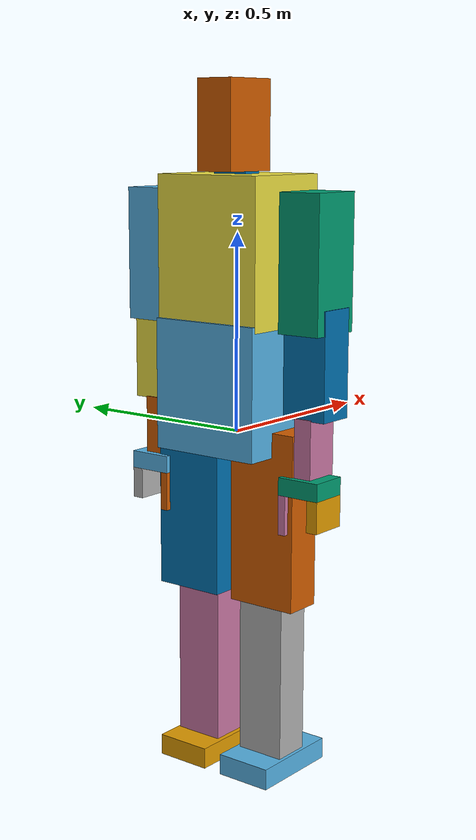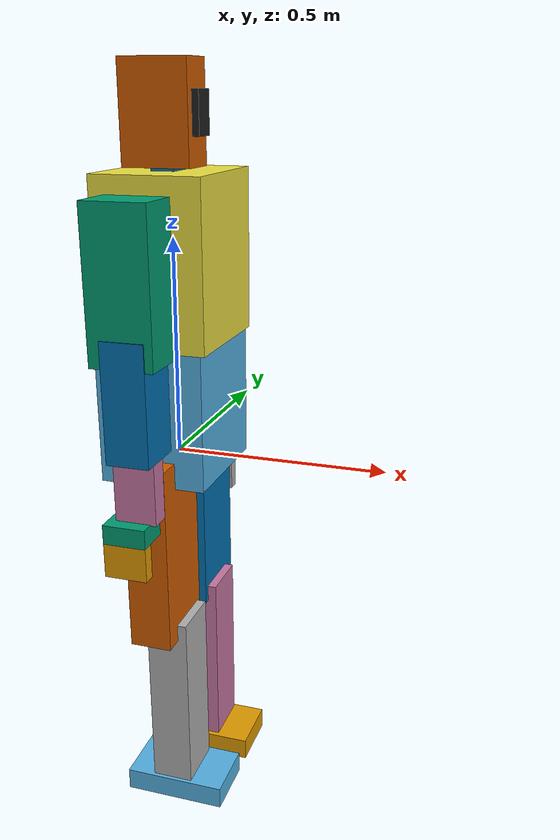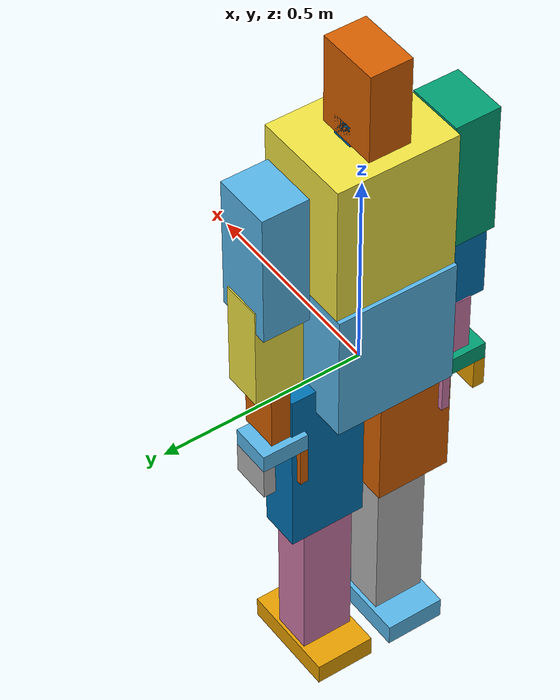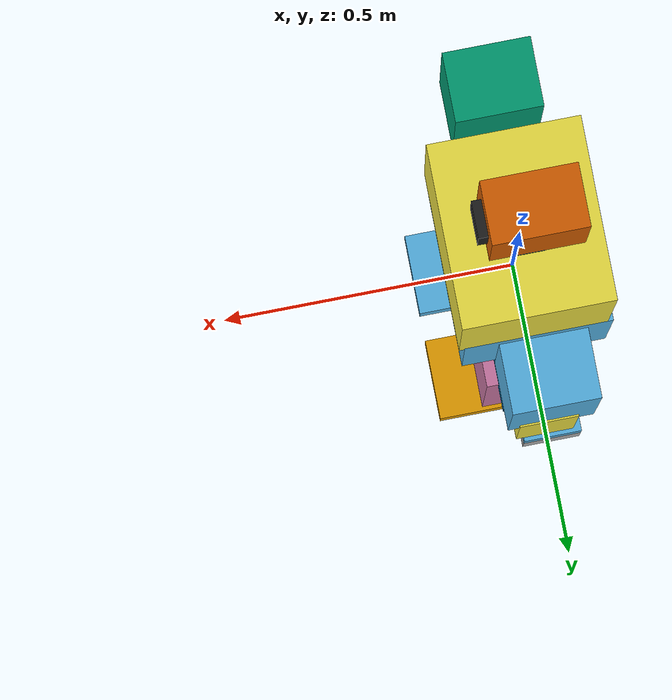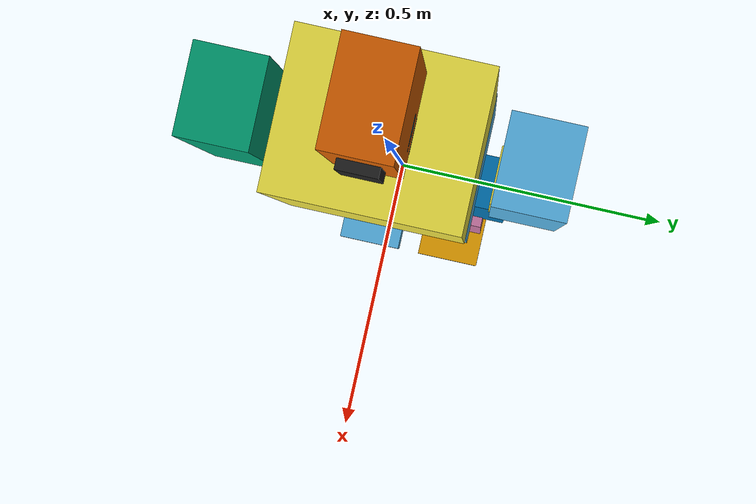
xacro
<?xml version="1.0"?>

<robot name="thor">

  <link name="base_link">
    <origin xyz="0 0 0.8925" />
    <inertial>
      <mass value="0" />
      <inertia ixx="0" iyy="0" izz="0" ixy="0" ixz="0" iyz="0" />
    </inertial>
  </link>
  <link name="torso">
    <origin xyz="0 0 0.8925" />
    <collision name="torso_collision">
       <origin xyz="-0.0085 0 0.1255015" />
      <geometry>
        <box size="0.25 0.3 0.3299971" />
      </geometry>
    </collision>
    <visual name="torso_visual">
      <origin xyz="-0.0085 0 0.1255015" />
      <geometry>
        <box size="0.25 0.3 0.3299971" />
      </geometry>
    </visual>
    <inertial>
      <origin xyz="-0.02884476 -0.000339931 0.139567304" />
      <mass value="12.227102888619" />
      <inertia ixx="0.168786051" iyy="0.151804339" izz="0.183945912" iyz="0.000299081" ixz="0.000191055" ixy="0.000230307" />
    </inertial>
  </link>

  <link name="kvh_link" />

  <joint name="kvh_joint" type="fixed">
    <origin xyz="-0.184 0 0.116855" rpy="0 0 1.5707963267949" />
    <axis xyz="0 0 1" />
    <parent link="torso" />
    <child link="kvh_link" />
  </joint>

  <link name="microstrain_link" />

  <joint name="microstrain_joint" type="fixed">
    <origin xyz="-0.0085 0 0.1255015" rpy="0 0 1.5707963267949" />
    <axis xyz="0 0 1" />
    <parent link="torso" />
    <child link="microstrain_link" />
  </joint>

  <link name="l_thigh">
    <collision name="l_thigh_collision">
      <origin xyz="-0.002281 0.017675 -0.2021685" />
      <geometry>
        <box size="0.1 0.18965 0.4496629" />
      </geometry>
    </collision>
    <visual name="l_thigh_visual">
      <origin xyz="-0.002281 0.017675 -0.2021685" />
      <geometry>
        <box size="0.1 0.18965 0.4496629" />
      </geometry>
    </visual>
    <inertial>
      <origin xyz="-0.02004484 0.027446943 -0.219706409" />
      <mass value="5.13807864986" />
      <inertia ixx="0.050251535" iyy="0.04823009" izz="0.01825638" iyz="0.000428731" ixz="-0.00485734" ixy="-0.000369726" />
    </inertial>
  </link>

  <link name="r_thigh">
    <collision name="r_thigh_collision">
      <origin xyz="-0.002281 -0.017675 -0.2021685" />
      <geometry>
        <box size="0.1 0.18965 0.4496629" />
      </geometry>
    </collision>
    <visual name="r_thigh_visual">
      <origin xyz="-0.002281 -0.017675 -0.2021685" />
      <geometry>
        <box size="0.1 0.18965 0.4496629" />
      </geometry>
    </visual>
    <inertial>
      <origin xyz="-0.020031387 -0.027475579 -0.219745232" />
      <mass value="5.1402729320628" />
      <inertia ixx="0.050266937" iyy="0.048269843" izz="0.018232029" iyz="-0.000479151" ixz="-0.004868597" ixy="0.000400241" />
    </inertial>
  </link>

  <link name="l_shin">
    <collision name="l_shin_collision">
      <origin xyz="0.0190724 0.0021182 -0.2013892" />
      <geometry>
        <box size="0.1 0.13 0.4512008" />
      </geometry>
    </collision>
    <visual name="l_shin_visual">
      <origin xyz="0.0190724 0.0021182 -0.2013892" />
      <geometry>
        <box size="0.1 0.13 0.4512008" />
      </geometry>
    </visual>
    <inertial>
      <origin xyz="0.035524575 0.00050081099999999 -0.159844769" />
      <mass value="4.2301928995278" />
      <inertia ixx="0.042672286" iyy="0.043770804" izz="0.012910027" iyz="-0.000372327" ixz="0.005863435" ixy="-4.6942e-05" />
    </inertial>
  </link>

  <link name="r_shin">
    <collision name="r_shin_collision">
      <origin xyz="0.0190724 -0.0021182 -0.2013892" />
      <geometry>
        <box size="0.1 0.13 0.4512008" />
      </geometry>
    </collision>
    <visual name="r_shin_visual">
      <origin xyz="0.0190724 -0.0021182 -0.2013892" />
      <geometry>
        <box size="0.1 0.13 0.4512008" />
      </geometry>
    </visual>
    <inertial>
      <origin xyz="0.035524569 -0.000282961 -0.159844769" />
      <mass value="4.2301928995278" />
      <inertia ixx="0.042672987" iyy="0.043770806" izz="0.012910729" iyz="0.000406027" ixz="0.005863442" ixy="6.7751e-05" />
    </inertial>
  </link>

  <link name="l_foot">
    <collision name="l_foot_collision">
      <origin xyz="0.025 0 -0.0458276" />
      <geometry>
        <box size="0.25 0.1485 0.05493235" />
      </geometry>
    </collision>
    <visual name="l_foot_visual">
      <origin xyz="0.025 0 -0.0458276" />
      <geometry>
        <box size="0.25 0.1485 0.05493235" />
      </geometry>
    </visual>
    <inertial>
      <origin xyz="-0.003042516 0.00096434599999999 -0.040483259" />
      <mass value="1.7169625926048" />
      <inertia ixx="0.00336244" iyy="0.006955959" izz="0.007417438" iyz="3.0838e-05" ixz="-0.001236319" ixy="5.764e-06" />
    </inertial>
  </link>

  <link name="r_foot">
    <collision name="r_foot_collision">
      <origin xyz="0.025 -0.00075 -0.0458276" />
      <geometry>
        <box size="0.25 0.1485 0.05493235" />
      </geometry>
    </collision>
    <visual name="r_foot_visual">
      <origin xyz="0.025 -0.00075 -0.0458276" />
      <geometry>
        <box size="0.25 0.1485 0.05493235" />
      </geometry>
    </visual>
    <inertial>
      <origin xyz="-0.002942557 -0.00094983899999999 -0.040490458" />
      <mass value="1.7201733736363" />
      <inertia ixx="0.003363358" iyy="0.006961913" izz="0.007424205" iyz="-3.0884e-05" ixz="-0.001236643" ixy="-3.631e-06" />
    </inertial>
  </link>

  <link name="l_sole"/>

  <link name="r_sole"/>

  <joint name="l_sole_joint" type="fixed">
    <origin xyz="0.025 0 -0.0740875" />
    <parent link="l_foot"/>
    <child link="l_sole"/>
  </joint>

  <joint name="r_sole_joint" type="fixed">
    <origin xyz="0.025 0 -0.0740875" />
    <parent link="r_foot"/>
    <child link="r_sole"/>
  </joint>

  <link name="l_hip_yaw_trunnion">
    <!-- Axis = "z", -->
    <inertial>
      <mass value="0.051573426573425" />
      <inertia ixx="0.0085833333333333" iyy="0.0085833333333333" izz="0.00075" ixy="0" ixz="0" iyz="0" />
    </inertial>
  </link>

  <link name="r_hip_yaw_trunnion">
    <!-- Axis = "z", -->
    <inertial>
      <mass value="0.051573426573425" />
      <inertia ixx="0.0085833333333333" iyy="0.0085833333333333" izz="0.00075" ixy="0" ixz="0" iyz="0" />
    </inertial>
  </link>

  <link name="l_hip_pitch_trunnion">
    <!-- Axis = "y", -->
    <inertial>
      <origin rpy="1.5707963267949 0 0" />
      <mass value="0.051573426573425" />
      <inertia ixx="0.0085833333333333" iyy="0.0085833333333333" izz="0.00075" ixy="0" ixz="0" iyz="0" />
    </inertial>
  </link>

  <link name="r_hip_pitch_trunnion">
    <!-- Axis = "y", -->
    <inertial>
      <origin rpy="1.5707963267949 0 0" />
      <mass value="0.051573426573425" />
      <inertia ixx="0.0085833333333333" iyy="0.0085833333333333" izz="0.00075" ixy="0" ixz="0" iyz="0" />
    </inertial>
  </link>

  <link name="l_ankle_pitch_trunnion">
    <!-- Axis = "y", -->
    <inertial>
      <origin rpy="1.5707963267949 0 0" />
      <mass value="0.051573426573425" />
      <inertia ixx="0.0085833333333333" iyy="0.0085833333333333" izz="0.00075" ixy="0" ixz="0" iyz="0" />
    </inertial>
  </link>

  <link name="r_ankle_pitch_trunnion">
    <!-- Axis = "y", -->
    <inertial>
      <origin rpy="1.5707963267949 0 0" />
      <mass value="0.051573426573425" />
      <inertia ixx="0.0085833333333333" iyy="0.0085833333333333" izz="0.00075" ixy="0" ixz="0" iyz="0" />
    </inertial>
  </link>

  <joint name="base_joint" type="fixed">
    <origin xyz="0 0 0" rpy="0 0 0" />
    <axis xyz="0 0 1"/>
    <parent link="base_link" />
    <child link="torso" />
  </joint>

  <joint name="l_hip_yaw" type="revolute">
    <origin xyz="0 0.1 0" />
    <parent link="torso" />
    <child link="l_hip_yaw_trunnion" />
    <axis xyz="0 0 1" />
    <limit lower="-0.34906585039887" upper="0.78539816339745" effort="150" velocity="1.6" />
    <dynamics damping="1.0" friction="0" />
  </joint>

  <joint name="r_hip_yaw" type="revolute">
    <origin xyz="0 -0.1 0" />
    <parent link="torso" />
    <child link="r_hip_yaw_trunnion" />
    <axis xyz="0 0 1" />
    <limit lower="-0.78539816339745" upper="0.34906585039887" effort="150" velocity="1.6" />
    <dynamics damping="1.0" friction="0" />
  </joint>

  <joint name="l_hip_roll" type="revolute">
    <origin xyz="0 0 0" />
    <parent link="l_hip_yaw_trunnion" />
    <child link="l_hip_pitch_trunnion" />
    <axis xyz="1 0 0" />
    <limit lower="-0.5235987755983" upper="0.78539816339745" effort="150" velocity="1.6" />
    <dynamics damping="1.0" friction="0" />
  </joint>

  <joint name="r_hip_roll" type="revolute">
    <origin xyz="0 0 0" />
    <parent link="r_hip_yaw_trunnion" />
    <child link="r_hip_pitch_trunnion" />
    <axis xyz="1 0 0" />
    <limit lower="-0.78539816339745" upper="0.5235987755983" effort="150" velocity="1.6" />
    <dynamics damping="1.0" friction="0" />
  </joint>

  <joint name="l_hip_pitch" type="revolute">
    <origin xyz="0 0 0" />
    <parent link="l_hip_pitch_trunnion" />
    <child link="l_thigh" />
    <axis xyz="0 1 0" />
    <limit lower="-2.0943951023932" upper="0.5235987755983" effort="150" velocity="1.6" />
    <dynamics damping="1.0" friction="0" />
  </joint>

  <joint name="r_hip_pitch" type="revolute">
    <origin xyz="0 0 0" />
    <parent link="r_hip_pitch_trunnion" />
    <child link="r_thigh" />
    <axis xyz="0 1 0" />
    <limit lower="-2.0943951023932" upper="0.5235987755983" effort="150" velocity="1.6" />
    <dynamics damping="1.0" friction="0" />
  </joint>

  <joint name="l_knee_pitch" type="revolute">
    <origin xyz="0 0 -0.41" />
    <parent link="l_thigh" />
    <child link="l_shin" />
    <axis xyz="0 1 0" />
    <limit lower="0" upper="2.3561944901923" effort="150" velocity="1.6" />
    <dynamics damping="1.0" friction="0" />
  </joint>

  <joint name="r_knee_pitch" type="revolute">
    <origin xyz="0 0 -0.41" />
    <parent link="r_thigh" />
    <child link="r_shin" />
    <axis xyz="0 1 0" />
    <limit lower="0" upper="2.3561944901923" effort="150" velocity="1.6" />
    <dynamics damping="1.0" friction="0" />
  </joint>

  <joint name="l_ankle_pitch" type="revolute">
    <origin xyz="0 0 -0.41" />
    <parent link="l_shin" />
    <child link="l_ankle_pitch_trunnion" />
    <axis xyz="0 1 0" />
    <limit lower="-0.95993108859688" upper="0.61086523819802" effort="150" velocity="1.6" />
    <dynamics damping="1.0" friction="0" />
  </joint>

  <joint name="r_ankle_pitch" type="revolute">
    <origin xyz="0 0 -0.41" />
    <parent link="r_shin" />
    <child link="r_ankle_pitch_trunnion" />
    <axis xyz="0 1 0" />
    <limit lower="-0.95993108859688" upper="0.61086523819802" effort="150" velocity="1.6" />
    <dynamics damping="1.0" friction="0" />
  </joint>

  <joint name="l_ankle_roll" type="revolute">
    <origin xyz="0 0 0" />
    <parent link="l_ankle_pitch_trunnion" />
    <child link="l_foot" />
    <axis xyz="1 0 0" />
    <limit lower="-0.5235987755983" upper="0.5235987755983" effort="150" velocity="1.6" />
    <dynamics damping="1.0" friction="0" />
  </joint>

  <joint name="r_ankle_roll" type="revolute">
    <origin xyz="0 0 0" />
    <parent link="r_ankle_pitch_trunnion" />
    <child link="r_foot" />
    <axis xyz="1 0 0" />
    <limit lower="-0.5235987755983" upper="0.5235987755983" effort="150" velocity="1.6" />
    <dynamics damping="1.0" friction="0" />
  </joint>

  <joint name="waist_yaw" type="revolute">
    <origin xyz="0 0 0.365" />
    <parent link="torso" />
    <child link="waist_pitch_trunnion" />
    <axis xyz="0 0 1" />
    <limit lower="-0.78539816339745" upper="0.78539816339745" effort="150" velocity="1.6" />
    <dynamics damping="1.0" friction="0" />
  </joint>

  <link name="waist_pitch_trunnion">
    <!-- Axis = "y", -->
    <inertial>
      <origin rpy="1.5707963267949 0 0" />
      <mass value="0.051573426573425" />
      <inertia ixx="0.0085833333333333" iyy="0.0085833333333333" izz="0.00075" ixy="0" ixz="0" iyz="0" />
    </inertial>
  </link>

  <joint name="waist_pitch" type="revolute">
    <origin xyz="0 0 0" />
    <parent link="waist_pitch_trunnion" />
    <child link="chest" />
    <axis xyz="0 1 0" />
    <limit lower="-0.34906585039887" upper="0.34906585039887" effort="150" velocity="1.6" />
    <dynamics damping="1.0" friction="0" />
  </joint>

  <link name="chest">
    <collision name="chest_collision">
      <origin xyz="0.001 0 0.09375" />
      <geometry>
        <box size="0.25 0.3 0.3685" />
      </geometry>
    </collision>
    <visual name="chest_visual">
      <origin xyz="0.001 0 0.09375" />
      <geometry>
        <box size="0.25 0.3 0.3685" />
      </geometry>
    </visual>
    <inertial>
      <origin xyz="-0.009475235 0.003477582 0.109792633" />
      <mass value="8.9112224908039" />
      <inertia ixx="0.212139518" iyy="0.177608078" izz="0.082558505" iyz="0.000482353" ixz="-0.001780773" ixy="0.000361146" />
    </inertial>
  </link>

  <joint name="head_yaw" type="revolute">
    <origin xyz="0 0 0.278" />
    <parent link="chest" />
    <child link="neck" />
    <axis xyz="0 0 1" />
    <limit lower="-1.5707963267949" upper="1.5707963267949" effort="150" velocity="1.6" />
    <dynamics damping="1.0" friction="0" />
  </joint>

  <link name="neck">
    <collision name="neck_collision">
      <origin xyz="0 0.003 0.024025" />
      <geometry>
        <box size="0.0541 0.096 0.05405" />
      </geometry>
    </collision>
    <visual name="neck_visual">
      <origin xyz="0 0.003 0.024025" />
      <geometry>
        <box size="0.0541 0.096 0.05405" />
      </geometry>
    </visual>
    <inertial>
      <origin xyz="1.2e-08 0.000124683 0.024528056" />
      <mass value="0.42837005699299" />
      <inertia ixx="0.000336505" iyy="0.000143407" izz="0.000323735" iyz="-8.463e-06" ixz="0" ixy="-0" />
    </inertial>
  </link>

  <joint name="head_pitch" type="revolute">
    <origin xyz="0 0 0.027" />
    <parent link="neck" />
    <child link="head" />
    <axis xyz="0 1 0" />
    <limit lower="-0.5235987755983" upper="1.0471975511966" effort="150" velocity="1.6" />
    <dynamics damping="1.0" friction="0" />
  </joint>

  <link name="head">
    <collision name="head_collision">
      <origin xyz="-0.0142568 0 0.08855" />
      <geometry>
        <box size="0.155386 0.102 0.2191" />
      </geometry>
    </collision>
    <visual name="head_visual">
      <origin xyz="-0.0142568 0 0.08855" />
      <geometry>
        <box size="0.155386 0.102 0.2191" />
      </geometry>
    </visual>
    <inertial>
      <origin xyz="-0.019216774 4.1336e-05 0.144911706" />
      <mass value="2.2650798087587" />
      <inertia ixx="0.013808097" iyy="0.011370053" izz="0.007199137" iyz="-9.74e-06" ixz="0.002271466" ixy="1.389e-06" />
    </inertial>
  </link>

  <!-- Flir Camera Frames -->
  <!-- Left Flir Camera -->
  <joint name="left_flir_frame_joint" type="fixed">
    <origin xyz="0.0211362 0.084 0.180" />
    <parent link="head" />
    <child link="left_flir_camera_frame" />
  </joint>

  <link name="left_flir_camera_frame">
  </link>

  <joint name="left_flir_optical_joint" type="fixed">
    <origin xyz="0 0 0" rpy="-1.5708 0.0 -1.5708" />
    <parent link="left_flir_camera_frame" />
    <child link="left_flir_optical_frame" />
  </joint>

  <link name="left_flir_optical_frame">
  </link>

  <!-- Right Flir Camera -->
  <joint name="right_flir_frame_joint" type="fixed">
     <origin xyz="0.0211362 -0.084 0.180" />
    <parent link="head" />
    <parent link="head" />
    <child link="right_flir_camera_frame" />
  </joint>

  <link name="right_flir_camera_frame">
  </link>

  <joint name="right_flir_optical_joint" type="fixed">
    <origin xyz="0 0 0" rpy="-1.5708 0.0 -1.5708" />
    <parent link="right_flir_camera_frame" />
    <child link="right_flir_optical_frame" />
  </joint>

  <link name="right_flir_optical_frame">
  </link>

  <!-- MultiSense stereo camera -->
  <gazebo reference="left_camera_frame">
    <sensor type="multicamera" name="stereo_camera">
      <!-- see MultiSenseSLPlugin.h for available modes -->
      <update_rate>30.0</update_rate>
      <camera name="left">
        <!-- Spec sheet says 80deg X 45deg @ 1024x544pix.  Based on feedback
             from teams, we're instead doing 80deg X 80deg @ 800x800pix. -->
        <horizontal_fov>1.3962634</horizontal_fov>
        <image>
          <width>800</width>
          <height>800</height>
          <format>R8G8B8</format>
        </image>
        <clip>
          <near>0.02</near>
          <far>300</far>
        </clip>
        <noise>
          <type>gaussian</type>
          <mean>0.0</mean>
          <stddev>0.007</stddev>
        </noise>
      </camera>
      <camera name="right">
        <pose>0 -0.07 0 0 0 0</pose>
        <!-- Spec sheet says 80deg X 45deg @ 1024x544pix.  Based on feedback
             from teams, we're instead doing 80deg X 80deg @ 800x800pix. -->
        <horizontal_fov>1.3962634</horizontal_fov>
        <image>
          <width>800</width>
          <height>800</height>
          <format>R8G8B8</format>
        </image>
        <clip>
          <near>0.02</near>
          <far>300</far>
        </clip>
        <noise>
          <type>gaussian</type>
          <mean>0.0</mean>
          <stddev>0.007</stddev>
        </noise>
      </camera>
      <plugin name="stereo_camera_controller" filename="libgazebo_ros_multicamera.so">
        <alwaysOn>true</alwaysOn>
        <updateRate>0.0</updateRate>
        <cameraName>multisense</cameraName>
        <imageTopicName>image_color</imageTopicName>
        <cameraInfoTopicName>camera_info</cameraInfoTopicName>
        <frameName>/multisense/left_camera_optical_frame</frameName>
        <hackBaseline>0.07</hackBaseline>
        <distortionK1>0.0</distortionK1>
        <distortionK2>0.0</distortionK2>
        <distortionK3>0.0</distortionK3>
        <distortionT1>0.0</distortionT1>
        <distortionT2>0.0</distortionT2>
      </plugin>
    </sensor>
  </gazebo>

  <!-- Multisense params Imported from Official Multisense URDF -->
  <link name="multisense_root"/>

  <joint name="multisense_joint" type="fixed">
    <origin xyz="-0.000435 0 0.18625" />
    <parent link="head"/>
    <child link="multisense_root"/>
  </joint>

  <joint name="left_camera_joint" type="fixed">
    <origin xyz="0.052 0.035 0.0"/>
    <parent link="multisense_root"/>
    <child link="left_camera_frame"/>
  </joint>

  <link name="left_camera_frame"/>

  <joint name="right_camera_joint" type="fixed">
    <origin xyz="0.052 -0.035 0.0"/>
    <parent link="multisense_root"/>
    <child link="right_camera_frame"/>
  </joint>

  <link name="right_camera_frame"/>

  <joint name="left_camera_optical_joint" type="fixed">
    <origin xyz="0 0 0" rpy="-1.57079632679 0.0 -1.57079632679"/>
    <parent link="left_camera_frame"/>
    <child link="/multisense/left_camera_optical_frame"/>
  </joint>

  <link name="/multisense/left_camera_optical_frame"/>

  <joint name="right_camera_optical_joint" type="fixed">
    <origin xyz="0 0 0" rpy="-1.57079632679 0.0 -1.57079632679"/>
    <parent link="right_camera_frame"/>
    <child link="/multisense/right_camera_optical_frame"/>
  </joint>

  <link name="/multisense/right_camera_optical_frame"/>

  <joint name="accel_joint" type="fixed">
    <origin xyz="0.047 0.0302 -0.00075" rpy="0.0 1.57079632679 0.0"/>
    <parent link="multisense_root"/>
    <child link="accel"/>
  </joint>

  <link name="accel"/>

  <joint name="mag_joint" type="fixed">
    <origin xyz="0.047 0.0302 -0.00075" rpy="0.0 1.57079632679 0.0"/>
    <parent link="multisense_root"/>
    <child link="mag"/>
  </joint>

  <link name="mag"/>

  <joint name="gyro_joint" type="fixed">
    <origin xyz="0.047 0.03880 0.00125" rpy="-1.57079632679 0.0 -1.57079632679"/>
    <parent link="multisense_root"/>
    <child link="gyro"/>
  </joint>

  <link name="gyro"/>

  <!-- Head Lidar -->
  <joint name="head_lidar_roll" type="continuous">
    <origin xyz="0 0 0.089" />
    <parent link="head" />
    <child link="head_lidar" />
    <axis xyz="1 0 0" />
    <limit effort="150" velocity="1.6"/>
    <dynamics damping="1.0" friction="0" />
  </joint>

  <link name="head_lidar">
    <collision name="head_lidar_collision">
      <origin xyz="0 0 0" />
      <geometry>
        <box size="0.1395 0.06 0.093" />
      </geometry>
    </collision>
    <visual name="head_lidar_visual">
      <origin xyz="0.0098 0 0" />
      <geometry>
        <box size="0.1395 0.06 0.093" />
      </geometry>
      <material name="$black"/>
    </visual>
    <inertial>
      <origin xyz="0.025657021 -2.21e-06 -3.295381276" />
      <mass value="0.44774993965034" />
      <inertia ixx="0.000368817" iyy="0.00087532" izz="0.000707833" iyz="-2.1e-08" ixz="-7.653e-06" ixy="5.5e-08" />
    </inertial>
  </link>

  <joint name="head_lidar_emitter_joint" type="fixed">
    <origin xyz="0.0495 0 0.02" />
    <parent link="head_lidar" />
    <child link="head_lidar_emitter" />
  </joint>

  <link name="head_lidar_emitter"/>

  <joint name="head_lidar_receiver_joint" type="fixed">
    <origin xyz="0.0495 0 0.02" />
    <parent link="head_lidar" />
    <child link="head_lidar_receiver" />
  </joint>

  <link name="head_lidar_receiver"/>

  <joint name="l_shoulder_pitch" type="revolute">
    <origin xyz="0 0.2375 0.214" />
    <parent link="chest" />
    <child link="l_shoulder_pitch_trunnion" />
    <axis xyz="0 1 0" />
    <limit lower="-0.7418" upper="1.5707963267949" effort="150" velocity="1.6" />
    <dynamics damping="1.0" friction="0" />
  </joint>

  <joint name="r_shoulder_pitch" type="revolute">
    <origin xyz="0 -0.2375 0.214" />
    <parent link="chest" />
    <child link="r_shoulder_pitch_trunnion" />
    <axis xyz="0 1 0" />
    <limit lower="-0.7418" upper="1.5707963267949" effort="150" velocity="1.6" />
    <dynamics damping="1.0" friction="0" />
  </joint>

  <link name="l_shoulder_pitch_trunnion">
    <origin xyz="0 0 0" />
    <!-- Axis = "y", -->
    <inertial>
      <origin rpy="1.5707963267949 0 0" />
      <mass value="0.051573426573425" />
      <inertia ixx="0.0085833333333333" iyy="0.0085833333333333" izz="0.00075" ixy="0" ixz="0" iyz="0" />
    </inertial>
  </link>

  <link name="r_shoulder_pitch_trunnion">
    <origin xyz="0 0 0" />
    <!-- Axis = "y", -->
    <inertial>
      <origin rpy="1.5707963267949 0 0" />
      <mass value="0.051573426573425" />
      <inertia ixx="0.0085833333333333" iyy="0.0085833333333333" izz="0.00075" ixy="0" ixz="0" iyz="0" />
    </inertial>
  </link>

  <joint name="l_shoulder_roll" type="revolute">
    <origin xyz="0 0 0" />
    <parent link="l_shoulder_pitch_trunnion" />
    <child link="l_shoulder_yaw_trunnion" />
    <axis xyz="1 0 0" />
    <limit lower="0" upper="3.1415926535898" effort="150" velocity="1.6" />
    <dynamics damping="1.0" friction="0" />
  </joint>

  <joint name="r_shoulder_roll" type="revolute">
    <origin xyz="0 0 0" />
    <parent link="r_shoulder_pitch_trunnion" />
    <child link="r_shoulder_yaw_trunnion" />
    <axis xyz="1 0 0" />
    <limit lower="-3.1415926535898" upper="0" effort="150" velocity="1.6" />
    <dynamics damping="1.0" friction="0" />
  </joint>

  <link name="l_shoulder_yaw_trunnion">
    <!-- Axis = "z", -->
    <inertial>
      <origin xyz="0 0 0" />
      <mass value="0.051573426573425" />
      <inertia ixx="0.0085833333333333" iyy="0.0085833333333333" izz="0.00075" ixy="0" ixz="0" iyz="0" />
    </inertial>
  </link>

  <link name="r_shoulder_yaw_trunnion">
    <!-- Axis = "z", -->
    <inertial>
      <origin xyz="0 0 0" />
      <mass value="0.051573426573425" />
      <inertia ixx="0.0085833333333333" iyy="0.0085833333333333" izz="0.00075" ixy="0" ixz="0" iyz="0" />
    </inertial>
  </link>

  <joint name="l_shoulder_yaw" type="revolute">
    <origin xyz="0 0 0" />
    <parent link="l_shoulder_yaw_trunnion" />
    <child link="l_arm" />
    <axis xyz="0 0 1" />
    <limit lower="-3.1415926535898" upper="3.1415926535898" effort="150" velocity="1.6" />
    <dynamics damping="1.0" friction="0" />
  </joint>

  <joint name="r_shoulder_yaw" type="revolute">
    <origin xyz="0 0 0" />
    <parent link="r_shoulder_yaw_trunnion" />
    <child link="r_arm" />
    <axis xyz="0 0 1" />
    <limit lower="-3.1415926535898" upper="3.1415926535898" effort="150" velocity="1.6" />
    <dynamics damping="1.0" friction="0" />
  </joint>

  <link name="l_arm">
    <collision name="l_arm_collision">
      <origin xyz="0 0 -0.1398848" />
      <geometry>
        <box size="0.144 0.114 0.3337695" />
      </geometry>
    </collision>
    <visual name="l_arm_visual">
      <origin xyz="0 0 -0.1398848" />
      <geometry>
        <box size="0.144 0.114 0.3337695" />
      </geometry>
    </visual>
    <inertial>
      <origin xyz="0.007214087 -0.001779321 -0.112868931" />
      <mass value="3.0258177870279" />
      <inertia ixx="0.038478468" iyy="0.039609455" izz="0.004412843" iyz="-0.000681544" ixz="-0.003774572" ixy="4.9829e-05" />
    </inertial>
  </link>

  <link name="r_arm">
    <collision name="r_arm_collision">
      <origin xyz="0 0 -0.1398848" />
      <geometry>
        <box size="0.144 0.114 0.3337695" />
      </geometry>
    </collision>
    <visual name="r_arm_visual">
      <origin xyz="0 0 -0.1398848" />
      <geometry>
        <box size="0.144 0.114 0.3337695" />
      </geometry>
    </visual>
    <inertial>
      <origin xyz="0.007213335 0.001779321 -0.112868931" />
      <mass value="3.0258177870279" />
      <inertia ixx="0.038478468" iyy="0.039609764" izz="0.004413151" iyz="0.000681544" ixz="-0.003774703" ixy="-4.9825e-05" />
    </inertial>
  </link>

  <joint name="l_elbow_pitch" type="revolute">
    <origin xyz="0.03 0 -0.27" />
    <parent link="l_arm" />
    <child link="l_forearm" />
    <axis xyz="0 1 0" />
    <limit lower="-2.763" upper="0" effort="150" velocity="1.6" />
    <dynamics damping="1.0" friction="0" />
  </joint>

  <joint name="r_elbow_pitch" type="revolute">
    <origin xyz="0.03 0 -0.27" />
    <parent link="r_arm" />
    <child link="r_forearm" />
    <axis xyz="0 1 0" />
    <limit lower="-2.763" upper="0" effort="150" velocity="1.6" />
    <dynamics damping="1.0" friction="0" />
  </joint>

  <link name="l_forearm">
    <collision name="l_forearm_collision">
      <origin xyz="-0.0257566 0 -0.1107567" />
      <geometry>
        <box size="0.0984867 0.12 0.2684867" />
      </geometry>
    </collision>
    <visual name="l_forearm_visual">
      <origin xyz="-0.0257566 0 -0.1107567" />
      <geometry>
        <box size="0.0984867 0.12 0.2684867" />
      </geometry>
    </visual>
    <inertial>
      <origin xyz="-0.030544339 0.00037668700000001 -0.135152852" />
      <mass value="1.5466488026748" />
      <inertia ixx="0.006819683" iyy="0.006750973" izz="0.001205454" iyz="4.3534e-05" ixz="0.000101312" ixy="5.676e-06" />
    </inertial>
  </link>

  <link name="r_forearm">
    <collision name="r_forearm_collision">
      <origin xyz="-0.0257566 0 -0.1107567" />
      <geometry>
        <box size="0.0984867 0.12 0.2684867" />
      </geometry>
    </collision>
    <visual name="r_forearm_visual">
      <origin xyz="-0.0257566 0 -0.1107567" />
      <geometry>
        <box size="0.0984867 0.12 0.2684867" />
      </geometry>
    </visual>
    <inertial>
      <origin xyz="-0.030544339 8.3232999999988e-05 -0.135152852" />
      <mass value="1.5466488026748" />
      <inertia ixx="0.006819886" iyy="0.006750973" izz="0.001205657" iyz="3.9504e-05" ixz="0.000101316" ixy="4.675e-06" />
    </inertial>
  </link>

  <link name="l_foreforearm">
    <collision name="l_foreforearm_collision">
      <origin xyz="0 0 -0.0925" />
      <geometry>
        <box size="0.096 0.048 0.15" />
      </geometry>
    </collision>
    <visual name="l_foreforearm_visual">
      <origin xyz="0 0 -0.0925" />
      <geometry>
        <box size="0.096 0.048 0.15" />
      </geometry>
    </visual>
    <inertial>
      <origin xyz="0.000452337 0 -0.079473129" />
      <mass value="0.4784829261888" />
      <inertia ixx="0.000584304" iyy="0.000662668" izz="0.000222334" iyz="-0" ixz="1.3796e-05" ixy="-0" />
    </inertial>
  </link>

  <link name="r_foreforearm">
    <collision name="r_foreforearm_collision">
      <origin xyz="0 0 -0.0925" />
      <geometry>
        <box size="0.096 0.048 0.15" />
      </geometry>
    </collision>
    <visual name="r_foreforearm_visual">
      <origin xyz="0 0 -0.0925" />
      <geometry>
        <box size="0.096 0.048 0.15" />
      </geometry>
    </visual>
    <inertial>
      <origin xyz="0.000452337 0 -0.079473129" />
      <mass value="0.4784829261888" />
      <inertia ixx="0.000584304" iyy="0.000662668" izz="0.000222334" iyz="-0" ixz="1.3796e-05" ixy="-0" />
    </inertial>
  </link>

  <joint name="l_wrist_yaw" type="revolute">
    <origin xyz="-0.03 0 -0.224" />
    <parent link="l_forearm" />
    <child link="l_wrist_yaw_trunnion" />
    <axis xyz="0 0 1" />
    <limit lower="-3.1415926535898" upper="2.2165" effort="150" velocity="1.6" />
    <dynamics damping="1.0" friction="0" />
  </joint>

  <joint name="r_wrist_yaw" type="revolute">
    <origin xyz="-0.03 0 -0.224" />
    <parent link="r_forearm" />
    <child link="r_wrist_yaw_trunnion" />
    <axis xyz="0 0 1" />
    <limit lower="-2.2165" upper="3.1415926535898" effort="150" velocity="1.6" />
    <dynamics damping="1.0" friction="0" />
  </joint>

  <link name="l_wrist_yaw_trunnion">
    <!-- Axis = "z", -->
    <inertial>
      <origin xyz="0 0 0" />
      <mass value="0.051573426573425" />
      <inertia ixx="0.0085833333333333" iyy="0.0085833333333333" izz="0.00075" ixy="0" ixz="0" iyz="0" />
    </inertial>
  </link>

  <link name="r_wrist_yaw_trunnion">
    <!-- Axis = "z", -->
    <inertial>
      <origin xyz="0 0 0" />
      <mass value="0.051573426573425" />
      <inertia ixx="0.0085833333333333" iyy="0.0085833333333333" izz="0.00075" ixy="0" ixz="0" iyz="0" />
    </inertial>
  </link>

  <joint name="l_wrist_roll" type="revolute">
    <origin xyz="0 0 0" />
    <parent link="l_wrist_yaw_trunnion" />
    <child link="l_foreforearm" />
    <axis xyz="1 0 0" />
    <limit lower="-1.5675" upper="1.5675" effort="150" velocity="1.6" />
    <dynamics damping="1.0" friction="0" />
  </joint>

  <joint name="r_wrist_roll" type="revolute">
    <origin xyz="0 0 0" />
    <parent link="r_wrist_yaw_trunnion" />
    <child link="r_foreforearm" />
    <axis xyz="1 0 0" />
    <limit lower="-1.5675" upper="1.5675" effort="150" velocity="1.6" />
    <dynamics damping="1.0" friction="0" />
  </joint>

  <joint name="l_wrist_pitch" type="revolute">
    <origin xyz="0 0 -0.135" />
    <parent link="l_foreforearm" />
    <child link="l_palm" />
    <axis xyz="0 0 1" />
    <limit lower="-3.1415926535898" upper="3.1415926535898" effort="150" velocity="1.6" />
    <dynamics damping="1.0" friction="0" />
  </joint>

  <joint name="r_wrist_pitch" type="revolute">
    <origin xyz="0 0 -0.135" />
    <parent link="r_foreforearm" />
    <child link="r_palm" />
    <axis xyz="0 0 1" />
    <limit lower="-3.1415926535898" upper="3.1415926535898" effort="150" velocity="1.6" />
    <dynamics damping="1.0" friction="0" />
  </joint>

  <link name="l_palm">
    <collision name="l_palm_collision">
      <origin xyz="-0.0155 0 -0.0528" />
      <geometry>
        <box size="0.1 0.115 0.045" />
      </geometry>
    </collision>
    <visual name="l_palm_visual">
      <origin xyz="-0.0155 0 -0.0528" />
      <geometry>
        <box size="0.1 0.115 0.045" />
      </geometry>
    </visual>
    <inertial>
      <!-- These are the inertial properties of the hand, but we're storing them in the palm -->
      <origin xyz="-0.001397658 -0.003533558 -0.050588331" />
      <mass value="0.6948956863811" />
      <inertia ixx="0.001226466" iyy="0.000902363" izz="0.000978176" iyz="-1.6886e-05" ixz="1.73e-06" ixy="2.295e-06" />
    </inertial>
  </link>

  <link name="r_palm">
    <collision name="r_palm_collision">
      <origin xyz="-0.0155 0 -0.0528" />
      <geometry>
        <box size="0.1 0.115 0.045" />
      </geometry>
    </collision>
    <visual name="r_palm_visual">
      <origin xyz="-0.0155 0 -0.0528" />
      <geometry>
        <box size="0.1 0.115 0.045" />
      </geometry>
    </visual>
    <inertial>
      <!-- These are the inertial properties of the hand, but we're storing them in the palm -->
      <origin xyz="-0.001289459 0.003590313 -0.050387019" />
      <mass value="0.69091040863634" />
      <inertia ixx="0.001216336" iyy="0.000886794" izz="0.000967611" iyz="1.3538e-05" ixz="-4.852e-06" ixy="-5.455e-06" />
    </inertial>
  </link>

  <joint name="l_finger" type="revolute">
    <origin xyz="0.0305 -0.0361 -0.0753" />
    <parent link="l_palm" />
    <child link="l_finger_link" />
    <axis xyz="1 0 0" />
    <limit lower="-1.3131" upper="2.0448" effort="150" velocity="1.6" />
    <dynamics damping="1.0" friction="0" />
  </joint>

  <joint name="r_finger" type="revolute">
    <origin xyz="0.0305 0.0361 -0.0753" />
    <parent link="r_palm" />
    <child link="r_finger_link" />
    <axis xyz="1 0 0" />
    <limit lower="-2.0448" upper="1.3131" effort="150" velocity="1.6" />
    <dynamics damping="1.0" friction="0" />
  </joint>

  <link name="l_finger_link">
    <collision name="l_finger_link_collision">
      <origin xyz="-0.006 -0.0114 -0.045" />
      <geometry>
        <box size="0.02 0.02 0.09" />
      </geometry>
    </collision>
    <visual name="l_finger_link_visual">
      <origin xyz="-0.006 -0.0114 -0.045" />
      <geometry>
        <box size="0.02 0.02 0.09" />
      </geometry>
    </visual>
    <inertial>
      <origin xyz="0.002130973 -0.002211594 -0.030809453" />
      <mass value="0.06553488744755" />
      <inertia ixx="4.5416e-05" iyy="4.2966e-05" izz="5.913e-06" iyz="-1.243e-06" ixz="1.898e-06" ixy="-3.89e-07" />
    </inertial>
  </link>

  <link name="r_finger_link">
    <collision name="r_finger_link_collision">
      <origin xyz="-0.006 0.0114 -0.045" />
      <geometry>
        <box size="0.02 0.02 0.09" />
      </geometry>
    </collision>
    <visual name="r_finger_link_visual">
      <origin xyz="-0.006 0.0114 -0.045" />
      <geometry>
        <box size="0.02 0.02 0.09" />
      </geometry>
    </visual>
    <inertial>
      <origin xyz="0.001840062 0.00193721 -0.031920591" />
      <mass value="0.16729933036713" />
      <inertia ixx="0.000117267" iyy="0.000110685" izz="1.4689e-05" iyz="2.888e-06" ixz="4.075e-06" ixy="9.96e-07" />
    </inertial>
  </link>

  <joint name="l_gripper" type="revolute">
    <origin xyz="-0.033 -0.0361 -0.0753" />
    <parent link="l_palm" />
    <child link="l_gripper_link" />
    <axis xyz="1 0 0" />
    <limit lower="-1.3131" upper="2.0448" effort="150" velocity="1.6" />
    <dynamics damping="1.0" friction="0" />
  </joint>

  <joint name="r_gripper" type="revolute">
    <origin xyz="-0.033 0.0361 -0.0753" />
    <parent link="r_palm" />
    <child link="r_gripper_link" />
    <axis xyz="1 0 0" />
    <limit lower="-2.0448" upper="1.3131" effort="150" velocity="1.6" />
    <dynamics damping="1.0" friction="0" />
  </joint>

  <link name="l_gripper_link">
    <collision name="l_gripper_link_collision">
      <origin xyz="-0.0225 -0.0114 -0.05" />
      <geometry>
        <box size="0.02 0.02 0.1" />
      </geometry>
    </collision>
    <visual name="l_gripper_link_visual">
      <origin xyz="-0.0225 -0.0114 -0.05" />
      <geometry>
        <box size="0.02 0.02 0.1" />
      </geometry>
    </visual>
    <inertial>
      <origin xyz="-0.001551544 -0.001746072 -0.035510388" />
      <mass value="0.15047602807692" />
      <inertia ixx="9.5861e-05" iyy="9.1176e-05" izz="1.2994e-05" iyz="-2.408e-06" ixz="-2.577e-06" ixy="9.41e-07" />
    </inertial>
  </link>

  <link name="r_gripper_link">
    <collision name="r_gripper_link_collision">
      <origin xyz="-0.0225 0.0114 -0.05" />
      <geometry>
        <box size="0.02 0.02 0.1" />
      </geometry>
    </collision>
    <visual name="r_gripper_link_visual">
      <origin xyz="-0.0225 0.0114 -0.05" />
      <geometry>
        <box size="0.02 0.02 0.1" />
      </geometry>
    </visual>
    <inertial>
      <origin xyz="-0.001490316 0.002013669 -0.028059492" />
      <mass value="0.071959428391606" />
      <inertia ixx="5.1654e-05" iyy="4.9064e-05" izz="6.653e-06" iyz="8.56e-07" ixz="-6.44e-07" ixy="-4.79e-07" />
    </inertial>
  </link>

  <joint name="l_thumb" type="fixed">
    <origin xyz="-0.0155 0.0425 -0.0753" />
    <parent link="l_palm" />
    <child link="l_thumb_link" />
  </joint>

  <joint name="r_thumb" type="fixed">
    <origin xyz="-0.0155 -0.0425 -0.0753" />
    <parent link="r_palm" />
    <child link="r_thumb_link" />
  </joint>

  <link name="l_thumb_link">
    <collision name="l_thumb_link_collision">
      <origin xyz="0 0 -0.04" />
      <geometry>
        <box size="0.1 0.03 0.08" />
      </geometry>
    </collision>
    <visual name="l_thumb_link_visual">
      <origin xyz="0 0 -0.04" />
      <geometry>
        <box size="0.1 0.03 0.08" />
      </geometry>
    </visual>
    <inertial>
      <origin xyz="0 0 -0.04" />
      <mass value="0.051573426573425" />
      <inertia ixx="0.0085833333333333" iyy="0.0085833333333333" izz="0.00075" iyz="0" ixz="0" ixy="0" />
    </inertial>
  </link>

  <link name="r_thumb_link">
    <collision name="r_thumb_link_collision">
      <origin xyz="0 0 -0.04" />
      <geometry>
        <box size="0.1 0.03 0.08" />
      </geometry>
    </collision>
    <visual name="r_thumb_link_visual">
      <origin xyz="0 0 -0.04" />
      <geometry>
        <box size="0.1 0.03 0.08" />
      </geometry>
    </visual>
    <inertial>
      <origin xyz="0 0 -0.04" />
      <mass value="0.051573426573425" />
      <inertia ixx="0.0085833333333333" iyy="0.0085833333333333" izz="0.00075" iyz="0" ixz="0" ixy="0" />
    </inertial>
  </link>
</robot>
